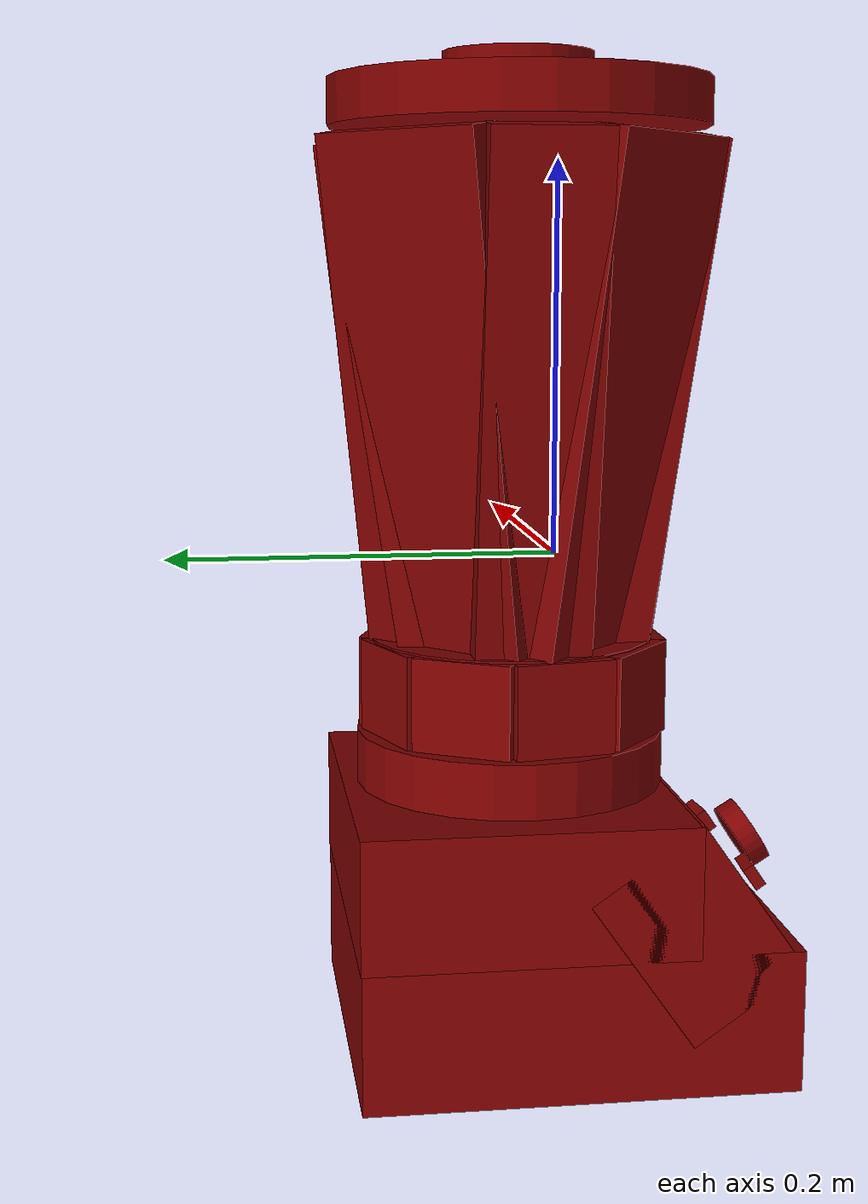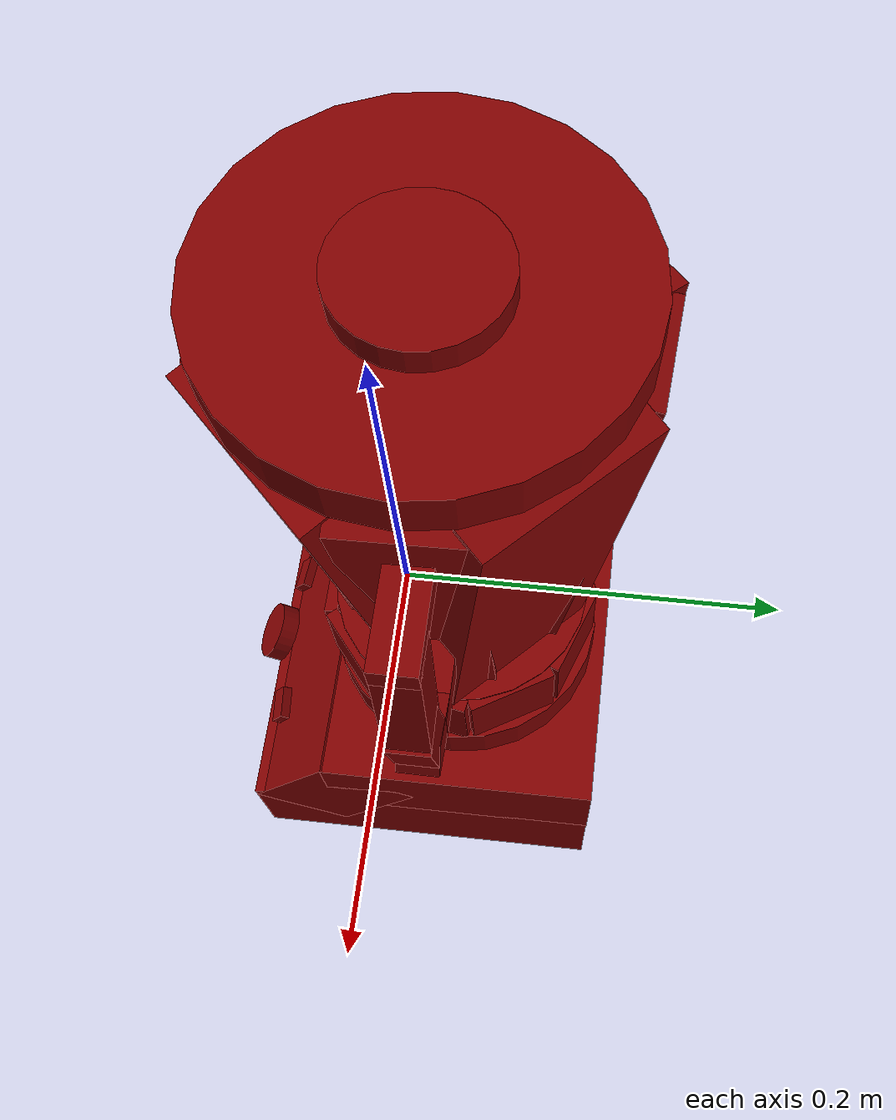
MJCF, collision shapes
<?xml version='1.0' encoding='UTF-8'?>
<mujoco model="model">
  <option timestep="0.002" gravity="0.0 0.0 -9.81"/>
  <compiler angle="radian"/>
  <asset>
    <mesh file="visuals/Blade001.obj" name="Blade001_vis"/>
    <mesh file="visuals/Body001.obj" name="Body001_vis"/>
    <mesh file="visuals/Button001.obj" name="Button001_vis"/>
    <mesh file="visuals/Button002.obj" name="Button002_vis"/>
    <mesh file="visuals/Jug001.obj" name="Jug001_vis"/>
    <mesh file="visuals/Jug001_Clear.obj" name="Jug001_Clear_vis"/>
    <mesh file="visuals/Knob001.obj" name="Knob001_vis"/>
    <mesh file="visuals/Lid001.obj" name="Lid001_vis"/>
    <texture file="visuals/T_BC001.png" name="Body001_material" type="2d"/>
    <material name="Body001_material" rgba="1 1 1 1.0" texture="Body001_material" shininess="0.5" specular="0.3103448502657381"/>
    <texture file="visuals/T_BC001.png" name="Button001_material" type="2d"/>
    <material name="Button001_material" rgba="1 1 1 1.0" texture="Button001_material" shininess="0.5" specular="0.3103448502657381"/>
    <texture file="visuals/T_BC001.png" name="Button002_material" type="2d"/>
    <material name="Button002_material" rgba="1 1 1 1.0" texture="Button002_material" shininess="0.5" specular="0.3103448502657381"/>
    <texture file="visuals/T_BC001.png" name="Jug001_material" type="2d"/>
    <material name="Jug001_material" rgba="1 1 1 1.0" texture="Jug001_material" shininess="0.5" specular="0.3103448502657381"/>
    <texture file="visuals/T_BC001.png" name="Blade001_material" type="2d"/>
    <material name="Blade001_material" rgba="1 1 1 1.0" texture="Blade001_material" shininess="0.5" specular="0.3103448502657381"/>
    <texture file="visuals/T_BC001.png" name="Jug001_Clear_material" type="2d"/>
    <material name="Jug001_Clear_material" rgba="1 1 1 0.699999988079071" texture="Jug001_Clear_material" shininess="0.5" specular="0.3103448502657381"/>
    <texture file="visuals/T_BC001.png" name="Lid001_material" type="2d"/>
    <material name="Lid001_material" rgba="1 1 1 1.0" texture="Lid001_material" shininess="0.5" specular="0.3103448502657381"/>
    <texture file="visuals/T_BC001.png" name="Knob001_material" type="2d"/>
    <material name="Knob001_material" rgba="1 1 1 1.0" texture="Knob001_material" shininess="0.5" specular="0.3103448502657381"/>
  </asset>
  <default>
    <default class="visual">
      <geom conaffinity="0" contype="0" group="1" type="mesh"/>
    </default>
    <default class="collision">
      <geom group="0" rgba="0.5 0 0 0.5"/>
    </default>
    <default class="spawn">
      <geom group="0" rgba="1 1 1 0.5" contype="0" conaffinity="0"/>
      <site group="0" rgba="1 1 1 0.5"/>
    </default>
    <default class="region">
      <geom group="1" conaffinity="0" contype="0" rgba="0 1 0 0"/>
    </default>
  </default>
  <worldbody>
    <body>
      <body name="object">
        <geom mesh="Body001_vis" type="mesh" solimp="0.998 0.998 0.001" solref="0.001 1" friction="0.95 0.3 0.1" class="visual" material="Body001_material"/>
        <geom class="collision" type="box" pos="-0.015612 -0.049564 -0.168835" size="0.09955644607543945 0.044624779373407364 0.032997120171785355" quat="0.8877590894699097 0.46030834317207336 0.0 0.0" density="1000.0"/>
        <geom class="collision" type="box" pos="-0.015612 0.004733 -0.213757" size="0.09955644607543945 0.10717274248600006 0.03572746366262436" quat="1.0 0.0 0.0 0.0" density="1000.0"/>
        <geom class="collision" type="box" pos="-0.015612 0.030626 -0.147045" size="0.09955644607543945 0.08168954402208328 0.032997116446495056" quat="1.0 0.0 0.0 0.0" density="1000.0"/>
        <geom class="collision" type="cylinder" pos="-0.016043 0.026247 -0.103772" size="0.07834652066230774 0.01722797192633152" quat="1.0 0.0 0.0 0.0" density="1000.0"/>
        <body name="Button001">
          <joint axis="0.10692079365253448 0.8121441602706909 -0.5735763907432556" pos="-0.061698 -0.090387 -0.155615" limited="true" name="Button001_joint" range="0.0 0.0015" type="slide" damping="1" frictionloss="1" armature=".01" stiffness="0.05" springref="-0.4"/>
          <geom mesh="Button001_vis" type="mesh" solimp="0.998 0.998 0.001" solref="0.001 1" friction="0.95 0.3 0.1" class="visual" material="Button001_material"/>
          <geom class="collision" type="box" pos="-0.061698 -0.090387 -0.155615" size="0.010050386190414429 0.0029207041952759027 0.00618571974337101" quat="0.95280921459198 -0.3004196286201477 0.013116603717207909 -0.0416005440056324" density="1000.0"/>
        </body>
        <body name="Button002">
          <joint axis="-0.10692079365253448 0.8121441602706909 -0.5735763907432556" pos="0.031339 -0.090387 -0.155615" limited="true" name="Button002_joint" range="0.0 0.0015" type="slide" damping="1" frictionloss="1" armature=".01" stiffness="0.05" springref="-0.4"/>
          <geom mesh="Button002_vis" type="mesh" solimp="0.998 0.998 0.001" solref="0.001 1" friction="0.95 0.3 0.1" class="visual" material="Button002_material"/>
          <geom class="collision" type="box" pos="0.031339 -0.090387 -0.155615" size="0.010050386190414429 0.0029207041952759027 0.00618571974337101" quat="0.95280921459198 -0.3004196286201477 -0.013116603717207909 0.0416005440056324" density="1000.0"/>
        </body>
        <body name="Jug001">
          <joint axis="0.0 0.0 1.0" pos="-0.016322 0.015513 0.049152" limited="true" name="Jug001_joint" range="0.0 0.05" type="slide" damping="1" frictionloss="1" armature=".01" stiffness="0.05"/>
          <geom mesh="Jug001_vis" type="mesh" solimp="0.998 0.998 0.001" solref="0.001 1" friction="0.95 0.3 0.1" class="visual" material="Jug001_material"/>
          <geom class="collision" type="cylinder" pos="-0.016043 0.026247 -0.061340" size="0.07198860496282578 0.023390205577015877" quat="1.0 0.0 0.0 0.0" density="1000.0"/>
          <body name="Blade001">
            <joint axis="0.0 0.0 1.0" pos="-0.016335 0.024566 -0.019085" limited="false" name="Blade001_joint" range="0 360" type="hinge" damping="1" frictionloss="1" armature=".01" stiffness="0.05"/>
            <geom mesh="Blade001_vis" type="mesh" solimp="0.998 0.998 0.001" solref="0.001 1" friction="0.95 0.3 0.1" class="visual" material="Blade001_material"/>
            <geom class="collision" type="cylinder" pos="-0.016339 0.024586 -0.024406" size="0.007670124527066946 0.010787472128868103" quat="1.0 0.0 0.0 0.0" density="1000.0"/>
            <geom class="collision" type="box" pos="-0.029776 0.024758 -0.016572" size="0.008050991222262383 0.005571782123297453 0.000517530832439661" quat="0.979388952255249 0.0 -0.20198345184326172 0.0" density="1000.0"/>
            <geom class="collision" type="box" pos="-0.045692 0.024721 -0.023506" size="0.009483198635280132 0.003432794939726591 0.0005175308906473219" quat="0.9779711961746216 0.0 -0.20873989164829254 0.0" density="1000.0"/>
            <geom class="collision" type="box" pos="0.012136 0.024721 -0.023481" size="0.009483198635280132 0.003432794939726591 0.0005175308906473219" quat="7.383476940958644e-08 0.9779711961746216 1.5759423988015442e-08 -0.20873990654945374" density="1000.0"/>
            <geom class="collision" type="box" pos="-0.003744 0.024758 -0.016420" size="0.008050992153584957 0.005571782123297453 0.0005175308906473219" quat="7.394180556730134e-08 0.979388952255249 1.5249323581656427e-08 -0.20198343694210052" density="1000.0"/>
            <geom class="collision" type="box" pos="-0.016064 0.054418 -0.002179" size="0.009483198635280132 0.003432794939726591 0.0005175308906473219" quat="0.6829333901405334 0.18330861628055573 -0.18330861628055573 0.6829333305358887" density="1000.0"/>
            <geom class="collision" type="box" pos="-0.016027 0.039307 -0.010726" size="0.008050991222262383 0.005571782123297453 0.000517530832439661" quat="0.6841824650764465 0.17858955264091492 -0.17858952283859253 0.6841826438903809" density="1000.0"/>
            <geom class="collision" type="box" pos="-0.016027 0.010910 -0.010726" size="0.008050991222262383 0.005571782123297453 0.000517530832439661" quat="0.17858953773975372 0.6841825842857361 0.6841825246810913 -0.17858950793743134" density="1000.0"/>
            <geom class="collision" type="box" pos="-0.016064 -0.004201 -0.002179" size="0.009483198635280132 0.003432794939726591 0.0005175308906473219" quat="0.18330861628055573 0.6829333305358887 0.6829333305358887 -0.18330855667591095" density="1000.0"/>
          </body>
          <body name="Jug001_Clear">
            <geom class="region" name="reg_int" type="box" pos="-0.0166235 0.024068999999999997 0.064287" size="0.0592115 0.059614 0.15187099999999998"/>
            <geom mesh="Jug001_Clear_vis" type="mesh" solimp="0.998 0.998 0.001" solref="0.001 1" friction="0.95 0.3 0.1" class="visual" material="Jug001_Clear_material"/>
            <geom class="collision" type="box" pos="-0.064544 -0.020689 0.083932" size="0.045629244297742844 0.008825822733342648 0.12603016197681427" quat="0.9212555885314941 0.06958147138357162 -0.028821583837270737 -0.38159650564193726" density="1000.0"/>
            <geom class="collision" type="box" pos="-0.015087 -0.046024 -0.062070" size="0.025154929608106613 0.0036438615061342716 0.023110834881663322" quat="1.0 0.0 0.0 0.0" density="1000.0"/>
            <geom class="collision" type="box" pos="-0.061070 0.073343 0.083954" size="0.045629244297742844 0.008825824595987797 0.12605208158493042" quat="0.3815966546535492 0.02882160060107708 -0.06958146393299103 -0.9212555289268494" density="1000.0"/>
            <geom class="collision" type="box" pos="0.032908 0.069811 0.083428" size="0.045629240572452545 0.008825824595987797 0.12551972270011902" quat="0.38159632682800293 0.02882157452404499 0.06958147138357162 0.9212556481361389" density="1000.0"/>
            <geom class="collision" type="box" pos="0.029398 -0.024077 0.083110" size="0.045629244297742844 0.008825824595987797 0.1251983642578125" quat="0.9212555289268494 0.06958146393299103 0.02882159873843193 0.3815966546535492" density="1000.0"/>
            <geom class="collision" type="box" pos="-0.060620 -0.029974 -0.062070" size="0.025154929608106613 0.0036438615061342716 0.023110834881663322" quat="0.9397565126419067 0.0 0.0 -0.3418445587158203" density="1000.0"/>
            <geom class="collision" type="box" pos="-0.085131 0.011228 -0.062070" size="0.025154927745461464 0.0036438617389649153 0.023110834881663322" quat="0.7679169178009033 0.0 0.0 -0.6405494213104248" density="1000.0"/>
            <geom class="collision" type="box" pos="-0.077417 0.059066 -0.062070" size="0.025154927745461464 0.0036438615061342716 0.023110834881663322" quat="0.501535177230835 0.0 0.0 -0.8651372790336609" density="1000.0"/>
            <geom class="collision" type="box" pos="-0.041758 0.090256 -0.062070" size="0.025154929608106613 0.0036438617389649153 0.023110834881663322" quat="0.1822759509086609 0.0 0.0 -0.9832473993301392" density="1000.0"/>
            <geom class="collision" type="box" pos="0.007493 0.091255 -0.062070" size="0.025154929608106613 0.0036438615061342716 0.023110834881663322" quat="0.1721271127462387 0.0 0.0 0.9850747585296631" density="1000.0"/>
            <geom class="collision" type="box" pos="0.044959 0.060590 -0.062070" size="0.025154929608106613 0.0036438617389649153 0.023110834881663322" quat="0.4993874430656433 0.0 0.0 0.8663787841796875" density="1000.0"/>
            <geom class="collision" type="box" pos="0.053844 0.012854 -0.062070" size="0.02515493333339691 0.003643861971795559 0.023110834881663322" quat="0.7668055891990662 0.0 0.0 0.6418794393539429" density="1000.0"/>
            <geom class="collision" type="box" pos="0.029800 -0.029339 -0.062070" size="0.025154931470751762 0.0036438617389649153 0.023110834881663322" quat="0.9407618045806885 0.0 0.0 0.33906814455986023" density="1000.0"/>
            <geom class="collision" type="box" pos="-0.090205 0.025339 0.083261" size="0.02850382588803768 0.008825824595987797 0.1265544295310974" quat="0.709650456905365 0.05359915643930435 -0.05290931463241577 -0.700516939163208" density="1000.0"/>
            <geom class="collision" type="box" pos="-0.016654 0.094261 0.082986" size="0.02850382775068283 0.008825822733342648 0.12627652287483215" quat="0.03943026438355446 0.00297812232747674 0.07525552809238434 0.9963799715042114" density="1000.0"/>
            <geom class="collision" type="box" pos="0.051368 0.023786 0.082214" size="0.02850382775068283 0.008825823664665222 0.12549585103988647" quat="0.6996919512748718 0.0528470017015934 0.05366060510277748 0.7104638814926147" density="1000.0"/>
            <geom class="collision" type="box" pos="-0.019557 -0.045821 0.083302" size="0.02850382775068283 0.008825824595987797 0.12659597396850586" quat="0.9962204694747925 0.07524346560239792 0.003268356202170253 0.04327284172177315" density="1000.0"/>
            <geom class="collision" type="box" pos="0.111584 0.025927 0.073795" size="0.023755626752972603 0.010479923337697983 0.011317872442305088" quat="0.6425239443778992 0.0 0.7662656307220459 0.0" density="1000.0"/>
            <geom class="collision" type="box" pos="0.096511 0.025927 0.170497" size="0.023755624890327454 0.010479923337697983 0.00687967985868454" quat="1.0 0.0 0.0 0.0" density="1000.0"/>
            <geom class="collision" type="box" pos="0.111100 0.025927 0.130129" size="0.038404859602451324 0.010479923337697983 0.011317871510982513" quat="0.7342893481254578 0.0 0.6788366436958313 0.0" density="1000.0"/>
            <geom class="collision" type="box" pos="0.101759 0.025960 0.047254" size="0.016342977061867714 0.010479924269020557 0.011317871510982513" quat="0.1951066106557846 -1.9346716726431623e-05 0.9807310700416565 -0.00999981164932251" density="1000.0"/>
            <geom class="collision" type="box" pos="0.072527 0.025928 0.039834" size="0.023755624890327454 0.010479924269020557 0.011317872442305088" quat="0.0005009422893635929 0.0019272376084700227 0.9999498724937439 -0.00981235783547163" density="1000.0"/>
          </body>
          <body name="Lid001">
            <joint axis="0.0 0.0 1.0" pos="-0.004041 0.023773 0.214101" limited="true" name="Lid001_joint" range="0.0 0.05" type="slide" damping="1" frictionloss="1" armature=".01" stiffness="0.05"/>
            <geom mesh="Lid001_vis" type="mesh" solimp="0.998 0.998 0.001" solref="0.001 1" friction="0.95 0.3 0.1" class="visual" material="Lid001_material"/>
            <geom class="collision" type="cylinder" pos="-0.016205 0.023159 0.224910" size="0.09406635165214539 0.01148100383579731" quat="1.0 0.0 0.0 0.0" density="1000.0"/>
            <geom class="collision" type="cylinder" pos="-0.012212 0.023159 0.241958" size="0.03719872981309891 0.007537921890616417" quat="1.0 0.0 0.0 0.0" density="1000.0"/>
          </body>
        </body>
        <body name="Knob001">
          <joint axis="1.9229623871719884e-16 0.8660253882408142 -0.5" pos="-0.016404 -0.101570 -0.148913" limited="true" name="Knob001_joint" range="0.0 4.974188368183839" type="hinge" damping="0.05" armature="0.001"/>
          <geom mesh="Knob001_vis" type="mesh" solimp="0.998 0.998 0.001" solref="0.001 1" friction="0.95 0.3 0.1" class="visual" material="Knob001_material"/>
          <geom class="collision" type="cylinder" pos="-0.016382 -0.099427 -0.150115" size="0.018016861751675606 0.005274674389511347" quat="0.874619722366333 0.48480960726737976 -1.509269775197314e-16 -4.327761319274158e-17" density="1000.0"/>
        </body>
        <geom class="region" name="reg_main" type="box" pos="-0.004040500000000002 0.0023805000000000007 0.0" size="0.1207415 0.11312249999999999 0.249503"/>
      </body>
    </body>
  </worldbody>
  <actuator>
    <motor name="Button001_joint_actuator" joint="Button001_joint" gear="0.1"/>
    <motor name="Button002_joint_actuator" joint="Button002_joint" gear="0.1"/>
    <motor name="Jug001_joint_actuator" joint="Jug001_joint" gear="20"/>
    <motor name="Knob001_joint_actuator" joint="Knob001_joint" gear="10"/>
    <motor name="Blade001_joint_actuator" joint="Blade001_joint" gear="10"/>
    <motor name="Lid001_joint_actuator" joint="Lid001_joint" gear="10"/>
  </actuator>
</mujoco>
